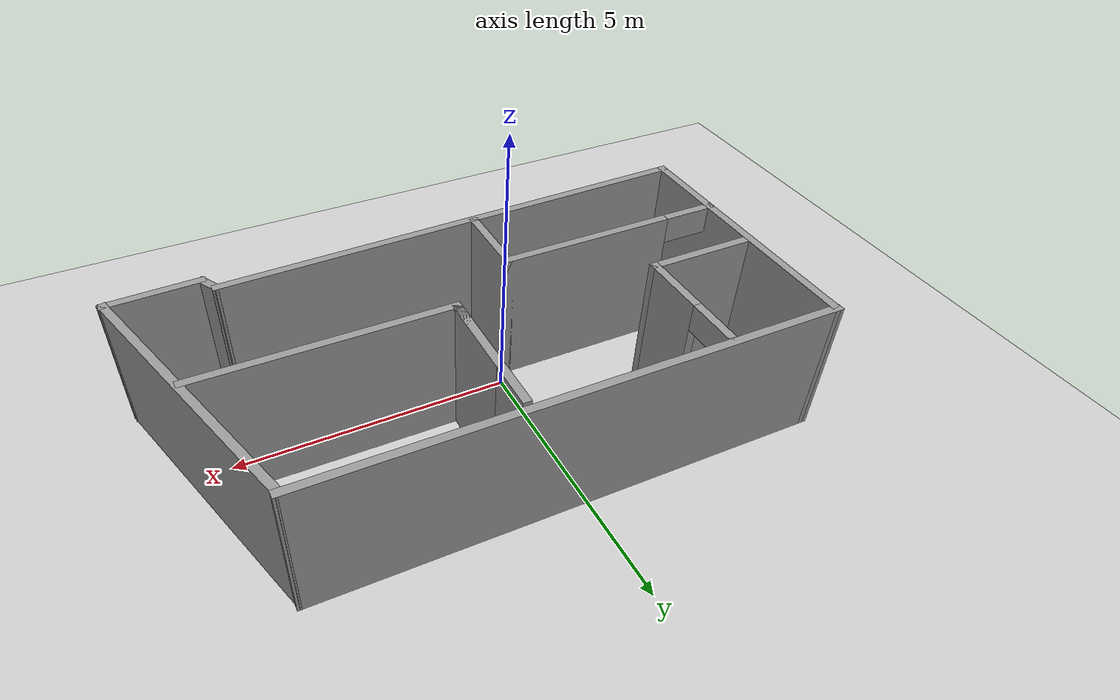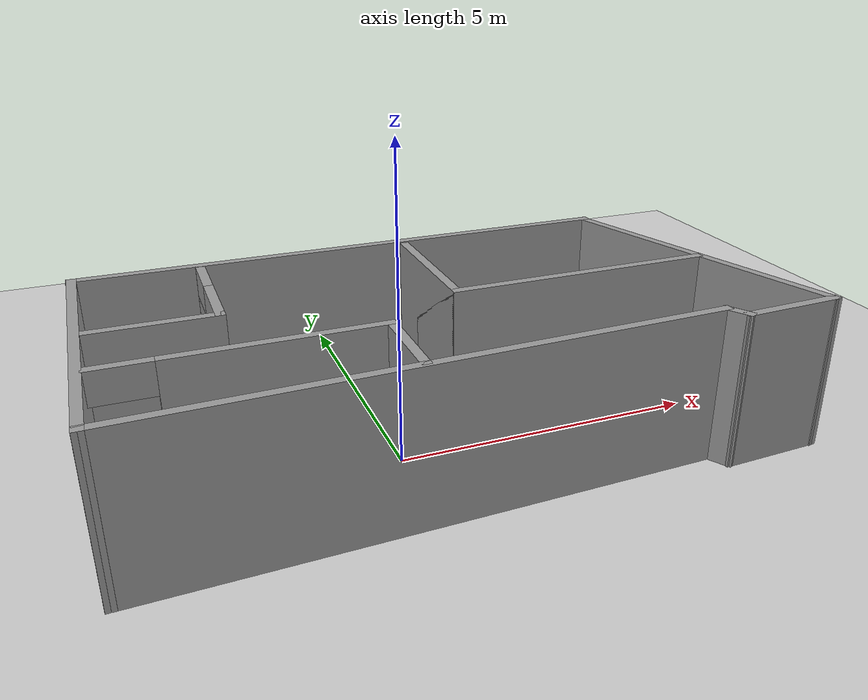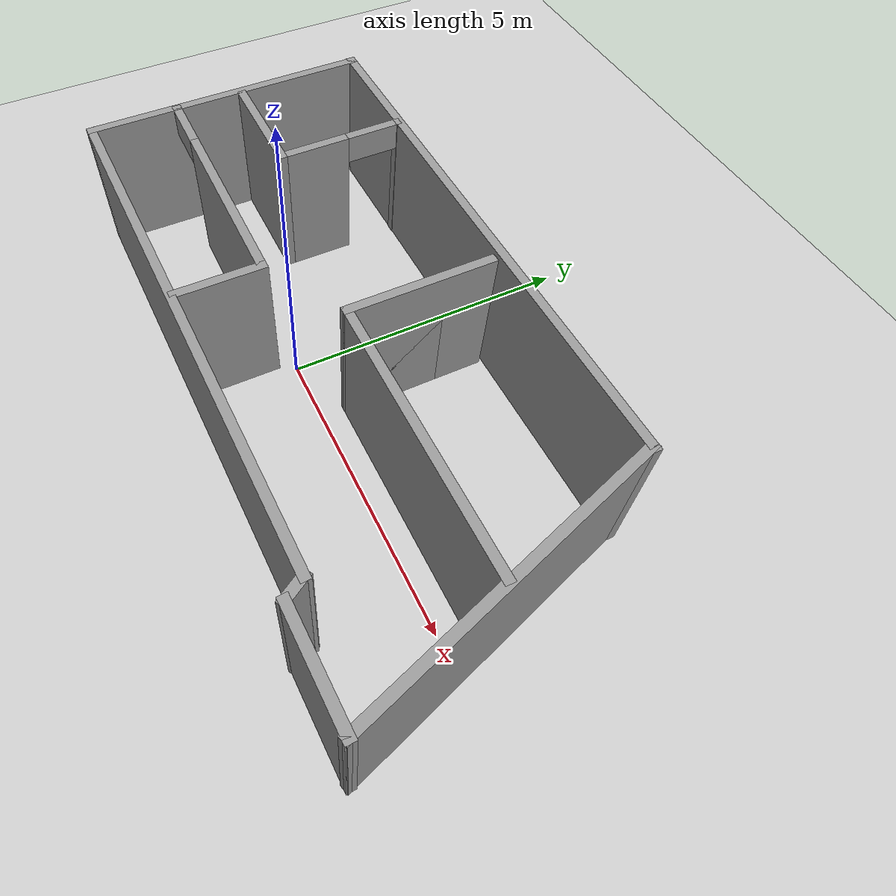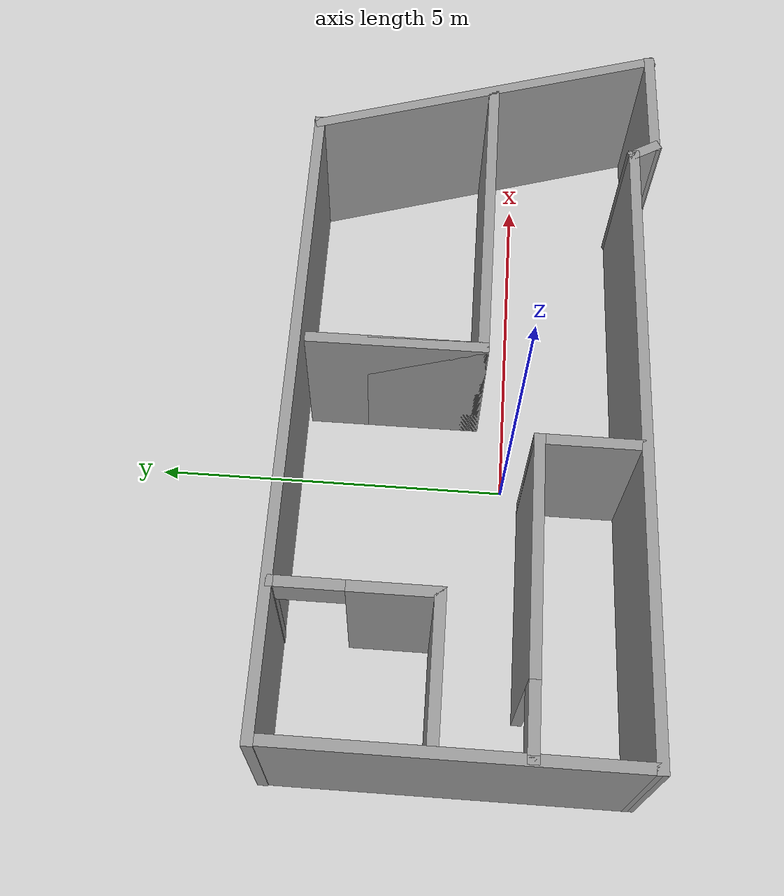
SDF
<sdf version="1.7">
 <world name="default">
  <plugin name="gazebo_ros_factory" filename="libgazebo_ros_factory.so"/>
  <light name="sun" type="directional">
   <pose>0 0 10 0 -0 0</pose>
   <diffuse>0.8 0.8 0.8 1</diffuse>
   <specular>0.2 0.2 0.2 1</specular>
   <attenuation>
    <range>1000</range>
    <constant>0.9</constant>
    <linear>0.01</linear>
    <quadratic>0.001</quadratic>
   </attenuation>
   <direction>-0.5 0.1 -0.9</direction>
   <spot><inner_angle>0</inner_angle><outer_angle>0</outer_angle><falloff>0</falloff></spot>
  </light>
  <model name="ground_plane">
   <static>1</static>
   <link name="link">
    <collision name="collision">
     <geometry><plane><normal>0 0 1</normal><size>100 100</size></plane></geometry>
     <surface>
      <contact><collide_bitmask>65535</collide_bitmask></contact>
      <friction><ode><mu>100</mu><mu2>50</mu2></ode></friction>
     </surface>
    </collision>
    <visual name="visual">
     <cast_shadows>0</cast_shadows>
     <geometry><plane><normal>0 0 1</normal><size>100 100</size></plane></geometry>
     <material>
      <script><uri>file://media/materials/scripts/gazebo.material</uri><name>Gazebo/Grey</name></script>
     </material>
    </visual>
   </link>
  </model>
  <gravity>0 0 -9.8</gravity>
  <magnetic_field>6e-06 2.3e-05 -4.2e-05</magnetic_field>
  <atmosphere type="adiabatic"/>
  <physics type="ode">
   <max_step_size>0.001</max_step_size>
   <real_time_factor>1</real_time_factor>
   <real_time_update_rate>1000</real_time_update_rate>
  </physics>
  <scene><ambient>0.4 0.4 0.4 1</ambient><background>0.7 0.7 0.7 1</background><shadows>1</shadows></scene>
  <audio><device>default</device></audio>
  <spherical_coordinates>
   <surface_model>EARTH_WGS84</surface_model>
   <latitude_deg>0</latitude_deg>
   <longitude_deg>0</longitude_deg>
   <elevation>0</elevation>
   <heading_deg>0</heading_deg>
  </spherical_coordinates>
  <model name="random_room">
   <pose>0.92926 0.99222 0 0 -0 0</pose>
   <link name="Wall_0">
    <collision name="Wall_0_Collision">
     <geometry><box><size>5.23328 0.15 2.5</size></box></geometry>
     <pose>0 0 1.25 0 -0 0</pose>
    </collision>
    <visual name="Wall_0_Visual">
     <pose>0 0 1.25 0 -0 0</pose>
     <geometry><box><size>5.23328 0.15 2.5</size></box></geometry>
     <material>
      <script><uri>file://media/materials/scripts/gazebo.material</uri><name>Gazebo/Grey</name></script>
      <ambient>1 1 1 1</ambient>
     </material>
     <meta><layer>0</layer></meta>
    </visual>
    <pose>4.51574 -0.42222 0 0 -0 1.86828</pose>
   </link>
   <link name="Wall_1">
    <collision name="Wall_1_Collision">
     <geometry><box><size>9.22002 0.15 2.5</size></box></geometry>
     <pose>0 0 1.25 0 -0 0</pose>
    </collision>
    <visual name="Wall_1_Visual">
     <pose>0 0 1.25 0 -0 0</pose>
     <geometry><box><size>9.22002 0.15 2.5</size></box></geometry>
     <material>
      <script><uri>file://media/materials/scripts/gazebo.material</uri><name>Gazebo/Grey</name></script>
      <ambient>1 1 1 1</ambient>
     </material>
     <meta><layer>0</layer></meta>
    </visual>
    <pose>-0.744262 2.02778 0 0 -0 3.13939</pose>
   </link>
   <link name="Wall_10">
    <pose>0.150738 0.64278 0 0 -0 -1.5708</pose>
    <visual name="Wall_10_Visual_0">
     <pose>0 0 1.25 0 -0 0</pose>
     <geometry><box><size>2.5 0.15 2.5</size></box></geometry>
     <material>
      <script><uri>file://media/materials/scripts/gazebo.material</uri><name>Gazebo/Grey</name></script>
      <ambient>1 1 1 1</ambient>
     </material>
     <meta><layer>0</layer></meta>
    </visual>
    <collision name="Wall_10_Collision_0">
     <geometry><box><size>2.5 0.15 2.5</size></box></geometry>
     <pose>0 0 1.25 0 -0 0</pose>
    </collision>
    <visual name="Wall_10_Visual_1">
     <pose>0.4275 0 1.25 0 -0 0</pose>
     <geometry><box><size>1.645 0.15 2.5</size></box></geometry>
     <material>
      <script><uri>file://media/materials/scripts/gazebo.material</uri><name>Gazebo/Grey</name></script>
      <ambient>1 1 1 1</ambient>
     </material>
     <meta><layer>0</layer></meta>
    </visual>
    <collision name="Wall_10_Collision_1">
     <geometry><box><size>1.645 0.15 2.5</size></box></geometry>
     <pose>0.4275 0 1.25 0 -0 0</pose>
    </collision>
   </link>
   <link name="Wall_11">
    <collision name="Wall_11_Collision">
     <geometry><box><size>4.5 0.15 2.5</size></box></geometry>
     <pose>0 0 1.25 0 -0 0</pose>
    </collision>
    <visual name="Wall_11_Visual">
     <pose>0 0 1.25 0 -0 0</pose>
     <geometry><box><size>4.5 0.15 2.5</size></box></geometry>
     <material>
      <script><uri>file://media/materials/scripts/gazebo.material</uri><name>Gazebo/Grey</name></script>
      <ambient>1 1 1 1</ambient>
     </material>
     <meta><layer>0</layer></meta>
    </visual>
    <pose>2.32574 -0.53222 0 0 -0 0</pose>
   </link>
   <link name="Wall_13">
    <pose>-3.19926 -1.31222 0 0 -0 0</pose>
    <visual name="Wall_13_Visual_0">
     <pose>-2.0725 0 1.25 0 -0 0</pose>
     <geometry><box><size>0.105 0.15 2.5</size></box></geometry>
     <material>
      <script><uri>file://media/materials/scripts/gazebo.material</uri><name>Gazebo/Grey</name></script>
      <ambient>1 1 1 1</ambient>
     </material>
     <meta><layer>0</layer></meta>
    </visual>
    <collision name="Wall_13_Collision_0">
     <geometry><box><size>0.105 0.15 2.5</size></box></geometry>
     <pose>-2.0725 0 1.25 0 -0 0</pose>
    </collision>
    <visual name="Wall_13_Visual_1">
     <pose>0.5025 0 1.25 0 -0 0</pose>
     <geometry><box><size>3.245 0.15 2.5</size></box></geometry>
     <material>
      <script><uri>file://media/materials/scripts/gazebo.material</uri><name>Gazebo/Grey</name></script>
      <ambient>1 1 1 1</ambient>
     </material>
     <meta><layer>0</layer></meta>
    </visual>
    <collision name="Wall_13_Collision_1">
     <geometry><box><size>3.245 0.15 2.5</size></box></geometry>
     <pose>0.5025 0 1.25 0 -0 0</pose>
    </collision>
    <visual name="Wall_13_Visual_2">
     <pose>-1.57 0 2.25 0 -0 0</pose>
     <geometry><box><size>0.9 0.15 0.5</size></box></geometry>
     <material>
      <script><uri>file://media/materials/scripts/gazebo.material</uri><name>Gazebo/Grey</name></script>
      <ambient>1 1 1 1</ambient>
     </material>
     <meta><layer>0</layer></meta>
    </visual>
    <collision name="Wall_13_Collision_2">
     <geometry><box><size>0.9 0.15 0.5</size></box></geometry>
     <pose>-1.57 0 2.25 0 -0 0</pose>
    </collision>
   </link>
   <link name="Wall_14">
    <collision name="Wall_14_Collision">
     <geometry><box><size>1.5 0.15 2.5</size></box></geometry>
     <pose>0 0 1.25 0 -0 0</pose>
    </collision>
    <visual name="Wall_14_Visual">
     <pose>0 0 1.25 0 -0 0</pose>
     <geometry><box><size>1.5 0.15 2.5</size></box></geometry>
     <material>
      <script><uri>file://media/materials/scripts/gazebo.material</uri><name>Gazebo/Grey</name></script>
      <ambient>1 1 1 1</ambient>
     </material>
     <meta><layer>0</layer></meta>
    </visual>
    <pose>-1.14926 -1.98722 0 0 -0 -1.5708</pose>
   </link>
   <link name="Wall_2">
    <collision name="Wall_2_Collision">
     <geometry><box><size>5 0.15 2.5</size></box></geometry>
     <pose>0 0 1.25 0 -0 0</pose>
    </collision>
    <visual name="Wall_2_Visual">
     <pose>0 0 1.25 0 -0 0</pose>
     <geometry><box><size>5 0.15 2.5</size></box></geometry>
     <material>
      <script><uri>file://media/materials/scripts/gazebo.material</uri><name>Gazebo/Grey</name></script>
      <ambient>1 1 1 1</ambient>
     </material>
     <meta><layer>0</layer></meta>
    </visual>
    <pose>-5.26926 -0.38722 0 0 -0 -1.5708</pose>
   </link>
   <link name="Wall_3">
    <collision name="Wall_3_Collision">
     <geometry><box><size>8.93251 0.15 2.5</size></box></geometry>
     <pose>0 0 1.25 0 -0 0</pose>
    </collision>
    <visual name="Wall_3_Visual">
     <pose>0 0 1.25 0 -0 0</pose>
     <geometry><box><size>8.93251 0.15 2.5</size></box></geometry>
     <material>
      <script><uri>file://media/materials/scripts/gazebo.material</uri><name>Gazebo/Grey</name></script>
      <ambient>1 1 1 1</ambient>
     </material>
     <meta><layer>0</layer></meta>
    </visual>
    <pose>-0.879262 -2.70722 0 0 -0 0.023913</pose>
   </link>
   <link name="Wall_4">
    <collision name="Wall_4_Collision">
     <geometry><box><size>0.5 0.15 2.5</size></box></geometry>
     <pose>0 0 1.25 0 -0 0</pose>
    </collision>
    <visual name="Wall_4_Visual">
     <pose>0 0 1.25 0 -0 0</pose>
     <geometry><box><size>0.5 0.15 2.5</size></box></geometry>
     <material>
      <script><uri>file://media/materials/scripts/gazebo.material</uri><name>Gazebo/Grey</name></script>
      <ambient>1 1 1 1</ambient>
     </material>
     <meta><layer>0</layer></meta>
    </visual>
    <pose>3.59824 -2.75377 0 0 -0 -1.0472</pose>
   </link>
   <link name="Wall_5">
    <collision name="Wall_5_Collision">
     <geometry><box><size>1.72589 0.15 2.5</size></box></geometry>
     <pose>0 0 1.25 0 -0 0</pose>
    </collision>
    <visual name="Wall_5_Visual">
     <pose>0 0 1.25 0 -0 0</pose>
     <geometry><box><size>1.72589 0.15 2.5</size></box></geometry>
     <material>
      <script><uri>file://media/materials/scripts/gazebo.material</uri><name>Gazebo/Grey</name></script>
      <ambient>1 1 1 1</ambient>
     </material>
     <meta><layer>0</layer></meta>
    </visual>
    <pose>4.47324 -2.87877 0 0 -0 0.033707</pose>
   </link>
   <link name="Wall_7">
    <pose>-3.31926 0.91778 0 0 -0 -1.5708</pose>
    <visual name="Wall_7_Visual_0">
     <pose>-1.0775 0 1.25 0 -0 0</pose>
     <geometry><box><size>0.095 0.15 2.5</size></box></geometry>
     <material>
      <script><uri>file://media/materials/scripts/gazebo.material</uri><name>Gazebo/Grey</name></script>
      <ambient>1 1 1 1</ambient>
     </material>
     <meta><layer>0</layer></meta>
    </visual>
    <collision name="Wall_7_Collision_0">
     <geometry><box><size>0.095 0.15 2.5</size></box></geometry>
     <pose>-1.0775 0 1.25 0 -0 0</pose>
    </collision>
    <visual name="Wall_7_Visual_1">
     <pose>0.4975 0 1.25 0 -0 0</pose>
     <geometry><box><size>1.255 0.15 2.5</size></box></geometry>
     <material>
      <script><uri>file://media/materials/scripts/gazebo.material</uri><name>Gazebo/Grey</name></script>
      <ambient>1 1 1 1</ambient>
     </material>
     <meta><layer>0</layer></meta>
    </visual>
    <collision name="Wall_7_Collision_1">
     <geometry><box><size>1.255 0.15 2.5</size></box></geometry>
     <pose>0.4975 0 1.25 0 -0 0</pose>
    </collision>
    <visual name="Wall_7_Visual_2">
     <pose>-0.58 0 2.25 0 -0 0</pose>
     <geometry><box><size>0.9 0.15 0.5</size></box></geometry>
     <material>
      <script><uri>file://media/materials/scripts/gazebo.material</uri><name>Gazebo/Grey</name></script>
      <ambient>1 1 1 1</ambient>
     </material>
     <meta><layer>0</layer></meta>
    </visual>
    <collision name="Wall_7_Collision_2">
     <geometry><box><size>0.9 0.15 0.5</size></box></geometry>
     <pose>-0.58 0 2.25 0 -0 0</pose>
    </collision>
   </link>
   <link name="Wall_8">
    <collision name="Wall_8_Collision">
     <geometry><box><size>2 0.15 2.5</size></box></geometry>
     <pose>0 0 1.25 0 -0 0</pose>
    </collision>
    <visual name="Wall_8_Visual">
     <pose>0 0 1.25 0 -0 0</pose>
     <geometry><box><size>2 0.15 2.5</size></box></geometry>
     <material>
      <script><uri>file://media/materials/scripts/gazebo.material</uri><name>Gazebo/Grey</name></script>
      <ambient>1 1 1 1</ambient>
     </material>
     <meta><layer>0</layer></meta>
    </visual>
    <pose>-4.24426 -0.13222 0 0 -0 3.14159</pose>
   </link>
   <static>1</static>
  </model>
 </world>
</sdf>
